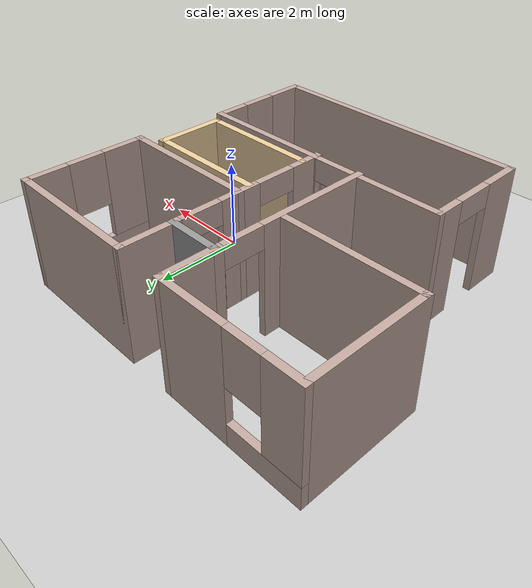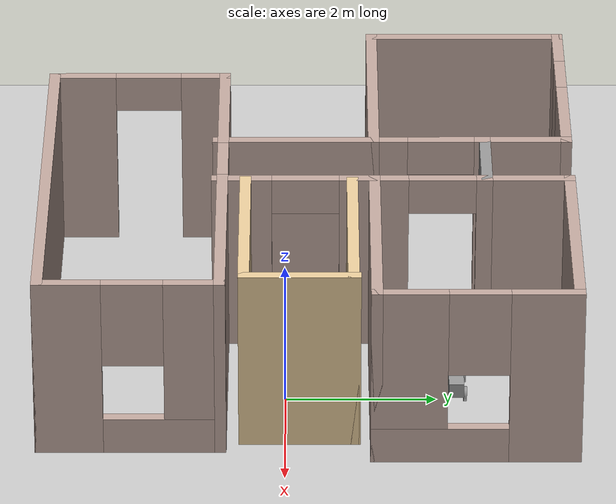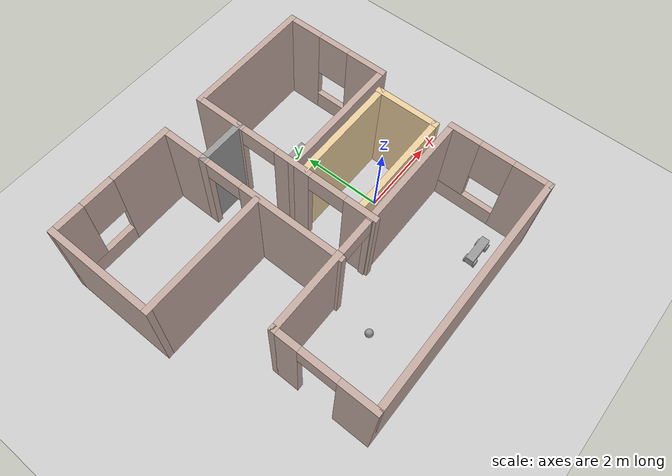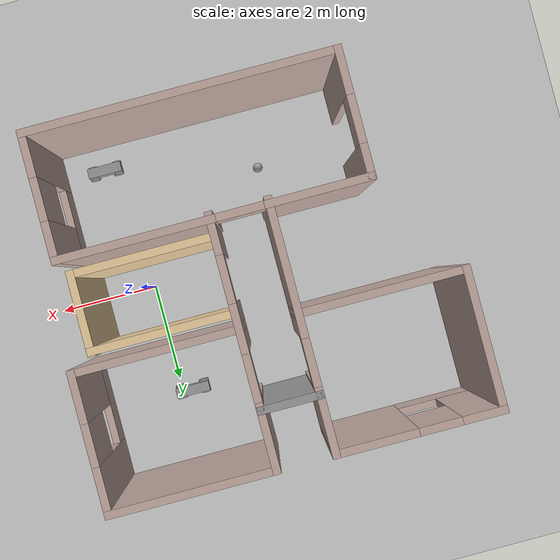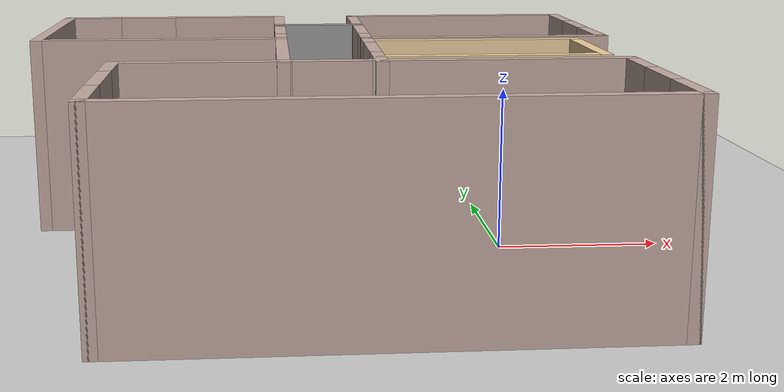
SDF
<sdf version="1.6">
 <world name="default">
  <plugin name="hello" filename="libhello.so"/>
  <light name="sun" type="directional">
   <pose>0 0 10 0 -0 0</pose>
   <diffuse>0.8 0.8 0.8 1</diffuse>
   <specular>0.2 0.2 0.2 1</specular>
   <attenuation>
    <range>1000</range>
    <constant>0.9</constant>
    <linear>0.01</linear>
    <quadratic>0.001</quadratic>
   </attenuation>
   <direction>-0.5 0.1 -0.9</direction>
  </light>
  <model name="ground_plane">
   <static>1</static>
   <link name="link">
    <collision name="collision">
     <geometry><plane><normal>0 0 1</normal><size>100 100</size></plane></geometry>
     <surface>
      <contact><collide_bitmask>65535</collide_bitmask></contact>
      <friction><ode><mu>100</mu><mu2>50</mu2></ode></friction>
     </surface>
    </collision>
    <visual name="visual">
     <cast_shadows>0</cast_shadows>
     <geometry><plane><normal>0 0 1</normal><size>100 100</size></plane></geometry>
     <material>
      <script><uri>file://media/materials/scripts/gazebo.material</uri><name>Gazebo/Grey</name></script>
     </material>
    </visual>
   </link>
  </model>
  <gravity>0 0 -9.8</gravity>
  <magnetic_field>6e-06 2.3e-05 -4.2e-05</magnetic_field>
  <atmosphere type="adiabatic"/>
  <physics name="default_physics" default="0" type="ode">
   <max_step_size>0.001</max_step_size>
   <real_time_factor>1</real_time_factor>
   <real_time_update_rate>1000</real_time_update_rate>
  </physics>
  <scene><ambient>0.4 0.4 0.4 1</ambient><background>0.7 0.7 0.7 1</background><shadows>1</shadows></scene>
  <spherical_coordinates>
   <surface_model>EARTH_WGS84</surface_model>
   <latitude_deg>0</latitude_deg>
   <longitude_deg>0</longitude_deg>
   <elevation>0</elevation>
   <heading_deg>0</heading_deg>
  </spherical_coordinates>
  <model name="Building">
   <pose>-2.12123 0.296908 0 0 -0 0</pose>
   <link name="Wall_10">
    <pose>0.481434 -1.13892 0 0 -0 3.14159</pose>
    <visual name="Wall_10_Visual_0">
     <pose>-1.4815 0 1.25 0 -0 0</pose>
     <geometry><box><size>3.037 0.15 2.5</size></box></geometry>
     <material>
      <script><uri>file://media/materials/scripts/gazebo.material</uri><name>Gazebo/Grey</name></script>
      <ambient>0.760784 0.662745 0.627451 1</ambient>
     </material>
     <meta><layer>0</layer></meta>
    </visual>
    <collision name="Wall_10_Collision_0">
     <geometry><box><size>3.037 0.15 2.5</size></box></geometry>
     <pose>-1.4815 0 1.25 0 -0 0</pose>
    </collision>
    <visual name="Wall_10_Visual_1">
     <pose>1.9685 0 1.25 0 -0 0</pose>
     <geometry><box><size>2.063 0.15 2.5</size></box></geometry>
     <material>
      <script><uri>file://media/materials/scripts/gazebo.material</uri><name>Gazebo/Grey</name></script>
      <ambient>0.760784 0.662745 0.627451 1</ambient>
     </material>
     <meta><layer>0</layer></meta>
    </visual>
    <collision name="Wall_10_Collision_1">
     <geometry><box><size>2.063 0.15 2.5</size></box></geometry>
     <pose>1.9685 0 1.25 0 -0 0</pose>
    </collision>
    <visual name="Wall_10_Visual_2">
     <pose>0.487 0 2.25 0 -0 0</pose>
     <geometry><box><size>0.9 0.15 0.5</size></box></geometry>
     <material>
      <script><uri>file://media/materials/scripts/gazebo.material</uri><name>Gazebo/Grey</name></script>
      <ambient>0.760784 0.662745 0.627451 1</ambient>
     </material>
     <meta><layer>0</layer></meta>
    </visual>
    <collision name="Wall_10_Collision_2">
     <geometry><box><size>0.9 0.15 0.5</size></box></geometry>
     <pose>0.487 0 2.25 0 -0 0</pose>
    </collision>
   </link>
   <link name="Wall_13">
    <pose>-0.55 0.588923 0 0 -0 1.5708</pose>
    <visual name="Wall_13_Visual_0">
     <pose>-0.55901 0 1.25 0 -0 0</pose>
     <geometry><box><size>2.63198 0.15 2.5</size></box></geometry>
     <material>
      <script><uri>file://media/materials/scripts/gazebo.material</uri><name>Gazebo/Grey</name></script>
      <ambient>0.760784 0.662745 0.627451 1</ambient>
     </material>
     <meta><layer>0</layer></meta>
    </visual>
    <collision name="Wall_13_Collision_0">
     <geometry><box><size>2.63198 0.15 2.5</size></box></geometry>
     <pose>-0.55901 0 1.25 0 -0 0</pose>
    </collision>
    <visual name="Wall_13_Visual_1">
     <pose>1.76599 0 1.25 0 -0 0</pose>
     <geometry><box><size>0.218021 0.15 2.5</size></box></geometry>
     <material>
      <script><uri>file://media/materials/scripts/gazebo.material</uri><name>Gazebo/Grey</name></script>
      <ambient>0.760784 0.662745 0.627451 1</ambient>
     </material>
     <meta><layer>0</layer></meta>
    </visual>
    <collision name="Wall_13_Collision_1">
     <geometry><box><size>0.218021 0.15 2.5</size></box></geometry>
     <pose>1.76599 0 1.25 0 -0 0</pose>
    </collision>
    <visual name="Wall_13_Visual_2">
     <pose>1.20698 0 2.25 0 -0 0</pose>
     <geometry><box><size>0.9 0.15 0.5</size></box></geometry>
     <material>
      <script><uri>file://media/materials/scripts/gazebo.material</uri><name>Gazebo/Grey</name></script>
      <ambient>0.760784 0.662745 0.627451 1</ambient>
     </material>
     <meta><layer>0</layer></meta>
    </visual>
    <collision name="Wall_13_Collision_2">
     <geometry><box><size>0.9 0.15 0.5</size></box></geometry>
     <pose>1.20698 0 2.25 0 -0 0</pose>
    </collision>
   </link>
   <link name="Wall_14">
    <collision name="Wall_14_Collision">
     <geometry><box><size>1.25 0.15 2.5</size></box></geometry>
     <pose>0 0 1.25 0 -0 0</pose>
    </collision>
    <visual name="Wall_14_Visual">
     <pose>0 0 1.25 0 -0 0</pose>
     <geometry><box><size>1.25 0.15 2.5</size></box></geometry>
     <material>
      <script><uri>file://media/materials/scripts/gazebo.material</uri><name>Gazebo/Grey</name></script>
      <ambient>1 1 1 1</ambient>
     </material>
     <meta><layer>0</layer></meta>
    </visual>
    <pose>0 2.38892 0 0 -0 0</pose>
   </link>
   <link name="Wall_15">
    <pose>0.55 0.588923 0 0 0 -1.5708</pose>
    <visual name="Wall_15_Visual_0">
     <pose>-1.76599 0 1.25 0 -0 0</pose>
     <geometry><box><size>0.218021 0.15 2.5</size></box></geometry>
     <material>
      <script><uri>file://media/materials/scripts/gazebo.material</uri><name>Gazebo/Grey</name></script>
      <ambient>0.760784 0.662745 0.627451 1</ambient>
     </material>
     <meta><layer>0</layer></meta>
    </visual>
    <collision name="Wall_15_Collision_0">
     <geometry><box><size>0.218021 0.15 2.5</size></box></geometry>
     <pose>-1.76599 0 1.25 0 -0 0</pose>
    </collision>
    <visual name="Wall_15_Visual_1">
     <pose>-0.29332 0 1.25 0 -0 0</pose>
     <geometry><box><size>0.927318 0.15 2.5</size></box></geometry>
     <material>
      <script><uri>file://media/materials/scripts/gazebo.material</uri><name>Gazebo/Grey</name></script>
      <ambient>0.760784 0.662745 0.627451 1</ambient>
     </material>
     <meta><layer>0</layer></meta>
    </visual>
    <collision name="Wall_15_Collision_1">
     <geometry><box><size>0.927318 0.15 2.5</size></box></geometry>
     <pose>-0.29332 0 1.25 0 -0 0</pose>
    </collision>
    <visual name="Wall_15_Visual_2">
     <pose>1.47267 0 1.25 0 -0 0</pose>
     <geometry><box><size>0.804661 0.15 2.5</size></box></geometry>
     <material>
      <script><uri>file://media/materials/scripts/gazebo.material</uri><name>Gazebo/Grey</name></script>
      <ambient>0.760784 0.662745 0.627451 1</ambient>
     </material>
     <meta><layer>0</layer></meta>
    </visual>
    <collision name="Wall_15_Collision_2">
     <geometry><box><size>0.804661 0.15 2.5</size></box></geometry>
     <pose>1.47267 0 1.25 0 -0 0</pose>
    </collision>
    <visual name="Wall_15_Visual_3">
     <pose>-1.20698 0 2.25 0 -0 0</pose>
     <geometry><box><size>0.9 0.15 0.5</size></box></geometry>
     <material>
      <script><uri>file://media/materials/scripts/gazebo.material</uri><name>Gazebo/Grey</name></script>
      <ambient>0.760784 0.662745 0.627451 1</ambient>
     </material>
     <meta><layer>0</layer></meta>
    </visual>
    <collision name="Wall_15_Collision_3">
     <geometry><box><size>0.9 0.15 0.5</size></box></geometry>
     <pose>-1.20698 0 2.25 0 -0 0</pose>
    </collision>
    <visual name="Wall_15_Visual_4">
     <pose>0.620339 0 2.25 0 -0 0</pose>
     <geometry><box><size>0.9 0.15 0.5</size></box></geometry>
     <material>
      <script><uri>file://media/materials/scripts/gazebo.material</uri><name>Gazebo/Grey</name></script>
      <ambient>0.760784 0.662745 0.627451 1</ambient>
     </material>
     <meta><layer>0</layer></meta>
    </visual>
    <collision name="Wall_15_Collision_4">
     <geometry><box><size>0.9 0.15 0.5</size></box></geometry>
     <pose>0.620339 0 2.25 0 -0 0</pose>
    </collision>
   </link>
   <link name="Wall_17">
    <collision name="Wall_17_Collision">
     <geometry><box><size>1.25 0.15 2.5</size></box></geometry>
     <pose>0 0 1.25 0 -0 0</pose>
    </collision>
    <visual name="Wall_17_Visual">
     <pose>0 0 1.25 0 -0 0</pose>
     <geometry><box><size>1.25 0.15 2.5</size></box></geometry>
     <material>
      <script><uri>file://media/materials/scripts/gazebo.material</uri><name>Gazebo/Grey</name></script>
      <ambient>0.760784 0.662745 0.627451 1</ambient>
     </material>
     <meta><layer>0</layer></meta>
    </visual>
    <pose>-0.55 2.93892 0 0 -0 1.5708</pose>
   </link>
   <link name="Wall_18">
    <pose>-2.1 3.48892 0 0 -0 3.14159</pose>
    <visual name="Wall_18_Visual_0">
     <pose>-0.816014 0 1.25 0 -0 0</pose>
     <geometry><box><size>1.61797 0.15 2.5</size></box></geometry>
     <material>
      <script><uri>file://media/materials/scripts/gazebo.material</uri><name>Gazebo/Grey</name></script>
      <ambient>0.760784 0.662745 0.627451 1</ambient>
     </material>
     <meta><layer>0</layer></meta>
    </visual>
    <collision name="Wall_18_Collision_0">
     <geometry><box><size>1.61797 0.15 2.5</size></box></geometry>
     <pose>-0.816014 0 1.25 0 -0 0</pose>
    </collision>
    <visual name="Wall_18_Visual_1">
     <pose>0.808986 0 0.25 0 -0 0</pose>
     <geometry><box><size>1.63203 0.15 0.5</size></box></geometry>
     <material>
      <script><uri>file://media/materials/scripts/gazebo.material</uri><name>Gazebo/Grey</name></script>
      <ambient>0.760784 0.662745 0.627451 1</ambient>
     </material>
     <meta><layer>0</layer></meta>
    </visual>
    <collision name="Wall_18_Collision_1">
     <geometry><box><size>1.63203 0.15 0.5</size></box></geometry>
     <pose>0.808986 0 0.25 0 -0 0</pose>
    </collision>
    <visual name="Wall_18_Visual_2">
     <pose>1.20899 0 1.5 0 -0 0</pose>
     <geometry><box><size>0.832029 0.15 2</size></box></geometry>
     <material>
      <script><uri>file://media/materials/scripts/gazebo.material</uri><name>Gazebo/Grey</name></script>
      <ambient>0.760784 0.662745 0.627451 1</ambient>
     </material>
     <meta><layer>0</layer></meta>
    </visual>
    <collision name="Wall_18_Collision_2">
     <geometry><box><size>0.832029 0.15 2</size></box></geometry>
     <pose>1.20899 0 1.5 0 -0 0</pose>
    </collision>
    <visual name="Wall_18_Visual_3">
     <pose>0.392971 0 1.9 0 -0 0</pose>
     <geometry><box><size>0.8 0.15 1.2</size></box></geometry>
     <material>
      <script><uri>file://media/materials/scripts/gazebo.material</uri><name>Gazebo/Grey</name></script>
      <ambient>0.760784 0.662745 0.627451 1</ambient>
     </material>
     <meta><layer>0</layer></meta>
    </visual>
    <collision name="Wall_18_Collision_3">
     <geometry><box><size>0.8 0.15 1.2</size></box></geometry>
     <pose>0.392971 0 1.9 0 -0 0</pose>
    </collision>
   </link>
   <link name="Wall_19">
    <collision name="Wall_19_Collision">
     <geometry><box><size>2.75 0.15 2.5</size></box></geometry>
     <pose>0 0 1.25 0 -0 0</pose>
    </collision>
    <visual name="Wall_19_Visual">
     <pose>0 0 1.25 0 -0 0</pose>
     <geometry><box><size>2.75 0.15 2.5</size></box></geometry>
     <material>
      <script><uri>file://media/materials/scripts/gazebo.material</uri><name>Gazebo/Grey</name></script>
      <ambient>0.760784 0.662745 0.627451 1</ambient>
     </material>
     <meta><layer>0</layer></meta>
    </visual>
    <pose>-3.65 2.18892 0 0 0 -1.5708</pose>
   </link>
   <link name="Wall_20">
    <collision name="Wall_20_Collision">
     <geometry><box><size>3.25 0.15 2.5</size></box></geometry>
     <pose>0 0 1.25 0 -0 0</pose>
    </collision>
    <visual name="Wall_20_Visual">
     <pose>0 0 1.25 0 -0 0</pose>
     <geometry><box><size>3.25 0.15 2.5</size></box></geometry>
     <material>
      <script><uri>file://media/materials/scripts/gazebo.material</uri><name>Gazebo/Grey</name></script>
      <ambient>0.760784 0.662745 0.627451 1</ambient>
     </material>
     <meta><layer>0</layer></meta>
    </visual>
    <pose>-2.1 0.888923 0 0 -0 0</pose>
   </link>
   <link name="Wall_22">
    <collision name="Wall_22_Collision">
     <geometry><box><size>1.25 0.15 2.5</size></box></geometry>
     <pose>0 0 1.25 0 -0 0</pose>
    </collision>
    <visual name="Wall_22_Visual">
     <pose>0 0 1.25 0 -0 0</pose>
     <geometry><box><size>1.25 0.15 2.5</size></box></geometry>
     <material>
      <script><uri>file://media/materials/scripts/gazebo.material</uri><name>Gazebo/Grey</name></script>
      <ambient>0.760784 0.662745 0.627451 1</ambient>
     </material>
     <meta><layer>0</layer></meta>
    </visual>
    <pose>0.55 2.93892 0 0 -0 1.5708</pose>
   </link>
   <link name="Wall_23">
    <collision name="Wall_23_Collision">
     <geometry><box><size>3.25 0.15 2.5</size></box></geometry>
     <pose>0 0 1.25 0 -0 0</pose>
    </collision>
    <visual name="Wall_23_Visual">
     <pose>0 0 1.25 0 -0 0</pose>
     <geometry><box><size>3.25 0.15 2.5</size></box></geometry>
     <material>
      <script><uri>file://media/materials/scripts/gazebo.material</uri><name>Gazebo/Grey</name></script>
      <ambient>0.760784 0.662745 0.627451 1</ambient>
     </material>
     <meta><layer>0</layer></meta>
    </visual>
    <pose>2.1 3.48892 0 0 -0 0</pose>
   </link>
   <link name="Wall_24">
    <pose>3.65 2.18892 0 0 0 -1.5708</pose>
    <visual name="Wall_24_Visual_0">
     <pose>-0.899165 0 1.25 0 -0 0</pose>
     <geometry><box><size>0.95167 0.15 2.5</size></box></geometry>
     <material>
      <script><uri>file://media/materials/scripts/gazebo.material</uri><name>Gazebo/Grey</name></script>
      <ambient>0.760784 0.662745 0.627451 1</ambient>
     </material>
     <meta><layer>0</layer></meta>
    </visual>
    <collision name="Wall_24_Collision_0">
     <geometry><box><size>0.95167 0.15 2.5</size></box></geometry>
     <pose>-0.899165 0 1.25 0 -0 0</pose>
    </collision>
    <visual name="Wall_24_Visual_1">
     <pose>0.475835 0 0.25 0 -0 0</pose>
     <geometry><box><size>1.79833 0.15 0.5</size></box></geometry>
     <material>
      <script><uri>file://media/materials/scripts/gazebo.material</uri><name>Gazebo/Grey</name></script>
      <ambient>0.760784 0.662745 0.627451 1</ambient>
     </material>
     <meta><layer>0</layer></meta>
    </visual>
    <collision name="Wall_24_Collision_1">
     <geometry><box><size>1.79833 0.15 0.5</size></box></geometry>
     <pose>0.475835 0 0.25 0 -0 0</pose>
    </collision>
    <visual name="Wall_24_Visual_2">
     <pose>0.875835 0 1.5 0 -0 0</pose>
     <geometry><box><size>0.99833 0.15 2</size></box></geometry>
     <material>
      <script><uri>file://media/materials/scripts/gazebo.material</uri><name>Gazebo/Grey</name></script>
      <ambient>0.760784 0.662745 0.627451 1</ambient>
     </material>
     <meta><layer>0</layer></meta>
    </visual>
    <collision name="Wall_24_Collision_2">
     <geometry><box><size>0.99833 0.15 2</size></box></geometry>
     <pose>0.875835 0 1.5 0 -0 0</pose>
    </collision>
    <visual name="Wall_24_Visual_3">
     <pose>-0.02333 0 1.9 0 -0 0</pose>
     <geometry><box><size>0.8 0.15 1.2</size></box></geometry>
     <material>
      <script><uri>file://media/materials/scripts/gazebo.material</uri><name>Gazebo/Grey</name></script>
      <ambient>0.760784 0.662745 0.627451 1</ambient>
     </material>
     <meta><layer>0</layer></meta>
    </visual>
    <collision name="Wall_24_Collision_3">
     <geometry><box><size>0.8 0.15 1.2</size></box></geometry>
     <pose>-0.02333 0 1.9 0 -0 0</pose>
    </collision>
   </link>
   <link name="Wall_25">
    <collision name="Wall_25_Collision">
     <geometry><box><size>3.25 0.15 2.5</size></box></geometry>
     <pose>0 0 1.25 0 -0 0</pose>
    </collision>
    <visual name="Wall_25_Visual">
     <pose>0 0 1.25 0 -0 0</pose>
     <geometry><box><size>3.25 0.15 2.5</size></box></geometry>
     <material>
      <script><uri>file://media/materials/scripts/gazebo.material</uri><name>Gazebo/Grey</name></script>
      <ambient>0.760784 0.662745 0.627451 1</ambient>
     </material>
     <meta><layer>0</layer></meta>
    </visual>
    <pose>2.1 0.888923 0 0 -0 3.14159</pose>
   </link>
   <link name="Wall_27">
    <collision name="Wall_27_Collision">
     <geometry><box><size>2.75 0.15 2.5</size></box></geometry>
     <pose>0 0 1.25 0 -0 0</pose>
    </collision>
    <visual name="Wall_27_Visual">
     <pose>0 0 1.25 0 -0 0</pose>
     <geometry><box><size>2.75 0.15 2.5</size></box></geometry>
     <material>
      <script><uri>file://media/materials/scripts/gazebo.material</uri><name>Gazebo/Grey</name></script>
      <ambient>0.921569 0.807843 0.615686 1</ambient>
     </material>
     <meta><layer>0</layer></meta>
    </visual>
    <pose>1.90653 0.593111 0 0 -0 0</pose>
   </link>
   <link name="Wall_28">
    <collision name="Wall_28_Collision">
     <geometry><box><size>1.59714 0.15 2.5</size></box></geometry>
     <pose>0 0 1.25 0 -0 0</pose>
    </collision>
    <visual name="Wall_28_Visual">
     <pose>0 0 1.25 0 -0 0</pose>
     <geometry><box><size>1.59714 0.15 2.5</size></box></geometry>
     <material>
      <script><uri>file://media/materials/scripts/gazebo.material</uri><name>Gazebo/Grey</name></script>
      <ambient>0.921569 0.807843 0.615686 1</ambient>
     </material>
     <meta><layer>0</layer></meta>
    </visual>
    <pose>3.20653 -0.107238 0 0 0 -1.5708</pose>
   </link>
   <link name="Wall_29">
    <collision name="Wall_29_Collision">
     <geometry><box><size>2.75 0.15 2.5</size></box></geometry>
     <pose>0 0 1.25 0 -0 0</pose>
    </collision>
    <visual name="Wall_29_Visual">
     <pose>0 0 1.25 0 -0 0</pose>
     <geometry><box><size>2.75 0.15 2.5</size></box></geometry>
     <material>
      <script><uri>file://media/materials/scripts/gazebo.material</uri><name>Gazebo/Grey</name></script>
      <ambient>0.921569 0.807843 0.615686 1</ambient>
     </material>
     <meta><layer>0</layer></meta>
    </visual>
    <pose>1.8834 -0.830718 0 0 -0 3.14159</pose>
   </link>
   <link name="Wall_7">
    <pose>-2.44357 -2.31392 0 0 0 -1.5708</pose>
    <visual name="Wall_7_Visual_0">
     <pose>-0.9085 0 1.25 0 -0 0</pose>
     <geometry><box><size>0.683 0.15 2.5</size></box></geometry>
     <material>
      <script><uri>file://media/materials/scripts/gazebo.material</uri><name>Gazebo/Grey</name></script>
      <ambient>0.760784 0.662745 0.627451 1</ambient>
     </material>
     <meta><layer>0</layer></meta>
    </visual>
    <collision name="Wall_7_Collision_0">
     <geometry><box><size>0.683 0.15 2.5</size></box></geometry>
     <pose>-0.9085 0 1.25 0 -0 0</pose>
    </collision>
    <visual name="Wall_7_Visual_1">
     <pose>0.7915 0 1.25 0 -0 0</pose>
     <geometry><box><size>0.917 0.15 2.5</size></box></geometry>
     <material>
      <script><uri>file://media/materials/scripts/gazebo.material</uri><name>Gazebo/Grey</name></script>
      <ambient>0.760784 0.662745 0.627451 1</ambient>
     </material>
     <meta><layer>0</layer></meta>
    </visual>
    <collision name="Wall_7_Collision_1">
     <geometry><box><size>0.917 0.15 2.5</size></box></geometry>
     <pose>0.7915 0 1.25 0 -0 0</pose>
    </collision>
    <visual name="Wall_7_Visual_2">
     <pose>-0.117 0 2.25 0 -0 0</pose>
     <geometry><box><size>0.9 0.15 0.5</size></box></geometry>
     <material>
      <script><uri>file://media/materials/scripts/gazebo.material</uri><name>Gazebo/Grey</name></script>
      <ambient>0.760784 0.662745 0.627451 1</ambient>
     </material>
     <meta><layer>0</layer></meta>
    </visual>
    <collision name="Wall_7_Collision_2">
     <geometry><box><size>0.9 0.15 0.5</size></box></geometry>
     <pose>-0.117 0 2.25 0 -0 0</pose>
    </collision>
   </link>
   <link name="Wall_8">
    <collision name="Wall_8_Collision">
     <geometry><box><size>6 0.15 2.5</size></box></geometry>
     <pose>0 0 1.25 0 -0 0</pose>
    </collision>
    <visual name="Wall_8_Visual">
     <pose>0 0 1.25 0 -0 0</pose>
     <geometry><box><size>6 0.15 2.5</size></box></geometry>
     <material>
      <script><uri>file://media/materials/scripts/gazebo.material</uri><name>Gazebo/Grey</name></script>
      <ambient>0.760784 0.662745 0.627451 1</ambient>
     </material>
     <meta><layer>0</layer></meta>
    </visual>
    <pose>0.481434 -3.48892 0 0 -0 0</pose>
   </link>
   <link name="Wall_9">
    <pose>3.40643 -2.31392 0 0 -0 1.5708</pose>
    <visual name="Wall_9_Visual_0">
     <pose>-0.801 0 1.25 0 -0 0</pose>
     <geometry><box><size>0.898 0.15 2.5</size></box></geometry>
     <material>
      <script><uri>file://media/materials/scripts/gazebo.material</uri><name>Gazebo/Grey</name></script>
      <ambient>0.760784 0.662745 0.627451 1</ambient>
     </material>
     <meta><layer>0</layer></meta>
    </visual>
    <collision name="Wall_9_Collision_0">
     <geometry><box><size>0.898 0.15 2.5</size></box></geometry>
     <pose>-0.801 0 1.25 0 -0 0</pose>
    </collision>
    <visual name="Wall_9_Visual_1">
     <pose>0.449 0 0.25 0 -0 0</pose>
     <geometry><box><size>1.602 0.15 0.5</size></box></geometry>
     <material>
      <script><uri>file://media/materials/scripts/gazebo.material</uri><name>Gazebo/Grey</name></script>
      <ambient>0.760784 0.662745 0.627451 1</ambient>
     </material>
     <meta><layer>0</layer></meta>
    </visual>
    <collision name="Wall_9_Collision_1">
     <geometry><box><size>1.602 0.15 0.5</size></box></geometry>
     <pose>0.449 0 0.25 0 -0 0</pose>
    </collision>
    <visual name="Wall_9_Visual_2">
     <pose>0.849 0 1.5 0 -0 0</pose>
     <geometry><box><size>0.802 0.15 2</size></box></geometry>
     <material>
      <script><uri>file://media/materials/scripts/gazebo.material</uri><name>Gazebo/Grey</name></script>
      <ambient>0.760784 0.662745 0.627451 1</ambient>
     </material>
     <meta><layer>0</layer></meta>
    </visual>
    <collision name="Wall_9_Collision_2">
     <geometry><box><size>0.802 0.15 2</size></box></geometry>
     <pose>0.849 0 1.5 0 -0 0</pose>
    </collision>
    <visual name="Wall_9_Visual_3">
     <pose>0.048 0 1.9 0 -0 0</pose>
     <geometry><box><size>0.8 0.15 1.2</size></box></geometry>
     <material>
      <script><uri>file://media/materials/scripts/gazebo.material</uri><name>Gazebo/Grey</name></script>
      <ambient>0.760784 0.662745 0.627451 1</ambient>
     </material>
     <meta><layer>0</layer></meta>
    </visual>
    <collision name="Wall_9_Collision_3">
     <geometry><box><size>0.8 0.15 1.2</size></box></geometry>
     <pose>0.048 0 1.9 0 -0 0</pose>
    </collision>
   </link>
   <static>1</static>
  </model>
  <model name="RobotCar">
   <link name="link_0">
    <pose>5.94727 -0.430169 0.2 0 -0 0</pose>
    <inertial>
     <mass>1</mass>
     <inertia>
      <ixx>0.166667</ixx>
      <ixy>0</ixy>
      <ixz>0</ixz>
      <iyy>0.166667</iyy>
      <iyz>0</iyz>
      <izz>0.166667</izz>
     </inertia>
    </inertial>
    <visual name="visual">
     <geometry><box><size>0.7 0.2 0.2</size></box></geometry>
     <material>
      <lighting>1</lighting>
      <script><uri>file://media/materials/scripts/gazebo.material</uri><name>Gazebo/Grey</name></script>
      <shader type="pixel"><normal_map>__default__</normal_map></shader>
      <ambient>0.3 0.3 0.3 1</ambient>
      <diffuse>0.7 0.7 0.7 1</diffuse>
      <specular>0.01 0.01 0.01 1</specular>
      <emissive>0 0 0 1</emissive>
     </material>
    </visual>
    <collision name="collision">
     <geometry><box><size>0.7 0.2 0.2</size></box></geometry>
     <surface>
      <friction>
       <ode><mu>1</mu><mu2>1</mu2><fdir1>0 0 0</fdir1><slip1>0</slip1><slip2>0</slip2></ode>
       <torsional>
        <coefficient>1</coefficient>
        <patch_radius>0</patch_radius>
        <surface_radius>0</surface_radius>
        <use_patch_radius>1</use_patch_radius>
        <ode><slip>0</slip></ode>
       </torsional>
      </friction>
      <bounce><restitution_coefficient>0</restitution_coefficient><threshold>1e+06</threshold></bounce>
      <contact>
       <collide_without_contact>0</collide_without_contact>
       <collide_without_contact_bitmask>1</collide_without_contact_bitmask>
       <collide_bitmask>1</collide_bitmask>
       <ode>
        <soft_cfm>0</soft_cfm>
        <soft_erp>0.2</soft_erp>
        <kp>1e+13</kp>
        <kd>1</kd>
        <max_vel>0.01</max_vel>
        <min_depth>0</min_depth>
       </ode>
       <bullet>
        <split_impulse>1</split_impulse>
        <split_impulse_penetration_threshold>-0.01</split_impulse_penetration_threshold>
        <soft_cfm>0</soft_cfm>
        <soft_erp>0.2</soft_erp>
        <kp>1e+13</kp>
        <kd>1</kd>
       </bullet>
      </contact>
     </surface>
    </collision>
   </link>
   <link name="link_2">
    <pose>5.69727 -0.313774 0.1 1.545 -0 0</pose>
    <inertial>
     <mass>1</mass>
     <inertia><ixx>0.145833</ixx><ixy>0</ixy><ixz>0</ixz><iyy>0.145833</iyy><iyz>0</iyz><izz>0.125</izz></inertia>
    </inertial>
    <visual name="visual">
     <geometry><cylinder><radius>0.1</radius><length>0.04</length></cylinder></geometry>
     <material>
      <lighting>1</lighting>
      <script><uri>file://media/materials/scripts/gazebo.material</uri><name>Gazebo/Grey</name></script>
      <shader type="pixel"><normal_map>__default__</normal_map></shader>
      <ambient>0.3 0.3 0.3 1</ambient>
      <diffuse>0.7 0.7 0.7 1</diffuse>
      <specular>0.01 0.01 0.01 1</specular>
      <emissive>0 0 0 1</emissive>
     </material>
    </visual>
    <collision name="collision">
     <geometry><cylinder><radius>0.1</radius><length>0.04</length></cylinder></geometry>
     <surface>
      <friction>
       <ode><mu>1</mu><mu2>1</mu2><fdir1>0 0 0</fdir1><slip1>0</slip1><slip2>0</slip2></ode>
       <torsional>
        <coefficient>1</coefficient>
        <patch_radius>0</patch_radius>
        <surface_radius>0</surface_radius>
        <use_patch_radius>1</use_patch_radius>
        <ode><slip>0</slip></ode>
       </torsional>
      </friction>
      <bounce><restitution_coefficient>0</restitution_coefficient><threshold>1e+06</threshold></bounce>
      <contact>
       <collide_without_contact>0</collide_without_contact>
       <collide_without_contact_bitmask>1</collide_without_contact_bitmask>
       <collide_bitmask>1</collide_bitmask>
       <ode>
        <soft_cfm>0</soft_cfm>
        <soft_erp>0.2</soft_erp>
        <kp>1e+13</kp>
        <kd>1</kd>
        <max_vel>0.01</max_vel>
        <min_depth>0</min_depth>
       </ode>
       <bullet>
        <split_impulse>1</split_impulse>
        <split_impulse_penetration_threshold>-0.01</split_impulse_penetration_threshold>
        <soft_cfm>0</soft_cfm>
        <soft_erp>0.2</soft_erp>
        <kp>1e+13</kp>
        <kd>1</kd>
       </bullet>
      </contact>
     </surface>
    </collision>
   </link>
   <link name="link_2_clone">
    <pose>6.19727 -0.312742 0.1 1.545 -0 0</pose>
    <inertial>
     <mass>1</mass>
     <inertia><ixx>0.145833</ixx><ixy>0</ixy><ixz>0</ixz><iyy>0.145833</iyy><iyz>0</iyz><izz>0.125</izz></inertia>
    </inertial>
    <visual name="visual">
     <geometry><cylinder><radius>0.1</radius><length>0.04</length></cylinder></geometry>
     <material>
      <lighting>1</lighting>
      <script><uri>file://media/materials/scripts/gazebo.material</uri><name>Gazebo/Grey</name></script>
      <shader type="pixel"><normal_map>__default__</normal_map></shader>
      <ambient>0.3 0.3 0.3 1</ambient>
      <diffuse>0.7 0.7 0.7 1</diffuse>
      <specular>0.01 0.01 0.01 1</specular>
      <emissive>0 0 0 1</emissive>
     </material>
    </visual>
    <collision name="collision">
     <geometry><cylinder><radius>0.1</radius><length>0.04</length></cylinder></geometry>
     <surface>
      <friction>
       <ode><mu>1</mu><mu2>1</mu2><fdir1>0 0 0</fdir1><slip1>0</slip1><slip2>0</slip2></ode>
       <torsional>
        <coefficient>1</coefficient>
        <patch_radius>0</patch_radius>
        <surface_radius>0</surface_radius>
        <use_patch_radius>1</use_patch_radius>
        <ode><slip>0</slip></ode>
       </torsional>
      </friction>
      <bounce><restitution_coefficient>0</restitution_coefficient><threshold>1e+06</threshold></bounce>
      <contact>
       <collide_without_contact>0</collide_without_contact>
       <collide_without_contact_bitmask>1</collide_without_contact_bitmask>
       <collide_bitmask>1</collide_bitmask>
       <ode>
        <soft_cfm>0</soft_cfm>
        <soft_erp>0.2</soft_erp>
        <kp>1e+13</kp>
        <kd>1</kd>
        <max_vel>0.01</max_vel>
        <min_depth>0</min_depth>
       </ode>
       <bullet>
        <split_impulse>1</split_impulse>
        <split_impulse_penetration_threshold>-0.01</split_impulse_penetration_threshold>
        <soft_cfm>0</soft_cfm>
        <soft_erp>0.2</soft_erp>
        <kp>1e+13</kp>
        <kd>1</kd>
       </bullet>
      </contact>
     </surface>
    </collision>
   </link>
   <link name="link_2_clone_0">
    <pose>6.19727 -0.552742 0.1 1.545 -0 0</pose>
    <inertial>
     <mass>1</mass>
     <inertia><ixx>0.145833</ixx><ixy>0</ixy><ixz>0</ixz><iyy>0.145833</iyy><iyz>0</iyz><izz>0.125</izz></inertia>
    </inertial>
    <visual name="visual">
     <geometry><cylinder><radius>0.1</radius><length>0.04</length></cylinder></geometry>
     <material>
      <lighting>1</lighting>
      <script><uri>file://media/materials/scripts/gazebo.material</uri><name>Gazebo/Grey</name></script>
      <shader type="pixel"><normal_map>__default__</normal_map></shader>
      <ambient>0.3 0.3 0.3 1</ambient>
      <diffuse>0.7 0.7 0.7 1</diffuse>
      <specular>0.01 0.01 0.01 1</specular>
      <emissive>0 0 0 1</emissive>
     </material>
    </visual>
    <collision name="collision">
     <geometry><cylinder><radius>0.1</radius><length>0.04</length></cylinder></geometry>
     <surface>
      <friction>
       <ode><mu>1</mu><mu2>1</mu2><fdir1>0 0 0</fdir1><slip1>0</slip1><slip2>0</slip2></ode>
       <torsional>
        <coefficient>1</coefficient>
        <patch_radius>0</patch_radius>
        <surface_radius>0</surface_radius>
        <use_patch_radius>1</use_patch_radius>
        <ode><slip>0</slip></ode>
       </torsional>
      </friction>
      <bounce><restitution_coefficient>0</restitution_coefficient><threshold>1e+06</threshold></bounce>
      <contact>
       <collide_without_contact>0</collide_without_contact>
       <collide_without_contact_bitmask>1</collide_without_contact_bitmask>
       <collide_bitmask>1</collide_bitmask>
       <ode>
        <soft_cfm>0</soft_cfm>
        <soft_erp>0.2</soft_erp>
        <kp>1e+13</kp>
        <kd>1</kd>
        <max_vel>0.01</max_vel>
        <min_depth>0</min_depth>
       </ode>
       <bullet>
        <split_impulse>1</split_impulse>
        <split_impulse_penetration_threshold>-0.01</split_impulse_penetration_threshold>
        <soft_cfm>0</soft_cfm>
        <soft_erp>0.2</soft_erp>
        <kp>1e+13</kp>
        <kd>1</kd>
       </bullet>
      </contact>
     </surface>
    </collision>
   </link>
   <link name="link_2_clone_1">
    <pose>5.69727 -0.552742 0.1 1.545 -0 0</pose>
    <inertial>
     <mass>1</mass>
     <inertia><ixx>0.145833</ixx><ixy>0</ixy><ixz>0</ixz><iyy>0.145833</iyy><iyz>0</iyz><izz>0.125</izz></inertia>
    </inertial>
    <visual name="visual">
     <geometry><cylinder><radius>0.1</radius><length>0.04</length></cylinder></geometry>
     <material>
      <lighting>1</lighting>
      <script><uri>file://media/materials/scripts/gazebo.material</uri><name>Gazebo/Grey</name></script>
      <shader type="pixel"><normal_map>__default__</normal_map></shader>
      <ambient>0.3 0.3 0.3 1</ambient>
      <diffuse>0.7 0.7 0.7 1</diffuse>
      <specular>0.01 0.01 0.01 1</specular>
      <emissive>0 0 0 1</emissive>
     </material>
    </visual>
    <collision name="collision">
     <geometry><cylinder><radius>0.1</radius><length>0.04</length></cylinder></geometry>
     <surface>
      <friction>
       <ode><mu>1</mu><mu2>1</mu2><fdir1>0 0 0</fdir1><slip1>0</slip1><slip2>0</slip2></ode>
       <torsional>
        <coefficient>1</coefficient>
        <patch_radius>0</patch_radius>
        <surface_radius>0</surface_radius>
        <use_patch_radius>1</use_patch_radius>
        <ode><slip>0</slip></ode>
       </torsional>
      </friction>
      <bounce><restitution_coefficient>0</restitution_coefficient><threshold>1e+06</threshold></bounce>
      <contact>
       <collide_without_contact>0</collide_without_contact>
       <collide_without_contact_bitmask>1</collide_without_contact_bitmask>
       <collide_bitmask>1</collide_bitmask>
       <ode>
        <soft_cfm>0</soft_cfm>
        <soft_erp>0.2</soft_erp>
        <kp>1e+13</kp>
        <kd>1</kd>
        <max_vel>0.01</max_vel>
        <min_depth>0</min_depth>
       </ode>
       <bullet>
        <split_impulse>1</split_impulse>
        <split_impulse_penetration_threshold>-0.01</split_impulse_penetration_threshold>
        <soft_cfm>0</soft_cfm>
        <soft_erp>0.2</soft_erp>
        <kp>1e+13</kp>
        <kd>1</kd>
       </bullet>
      </contact>
     </surface>
    </collision>
   </link>
   <joint name="link_0_JOINT_1" type="revolute">
    <parent>link_0</parent>
    <child>link_2_clone</child>
    <axis>
     <xyz>1 0 0</xyz>
     <use_parent_model_frame>0</use_parent_model_frame>
     <limit>
      <lower>-1.79769e+308</lower>
      <upper>1.79769e+308</upper>
      <effort>-1</effort>
      <velocity>-1</velocity>
     </limit>
     <dynamics>
      <spring_reference>0</spring_reference>
      <spring_stiffness>0</spring_stiffness>
      <damping>0</damping>
     </dynamics>
    </axis>
    <physics>
     <ode><limit><cfm>0</cfm><erp>0.2</erp></limit><suspension><cfm>0</cfm><erp>0.2</erp></suspension></ode>
    </physics>
   </joint>
   <joint name="link_0_JOINT_2" type="revolute">
    <parent>link_0</parent>
    <child>link_2</child>
    <axis>
     <xyz>1 0 0</xyz>
     <use_parent_model_frame>0</use_parent_model_frame>
     <limit>
      <lower>-1.79769e+308</lower>
      <upper>1.79769e+308</upper>
      <effort>-1</effort>
      <velocity>-1</velocity>
     </limit>
     <dynamics>
      <spring_reference>0</spring_reference>
      <spring_stiffness>0</spring_stiffness>
      <damping>0</damping>
     </dynamics>
    </axis>
    <physics>
     <ode><limit><cfm>0</cfm><erp>0.2</erp></limit><suspension><cfm>0</cfm><erp>0.2</erp></suspension></ode>
    </physics>
   </joint>
   <joint name="link_0_JOINT_3" type="revolute">
    <parent>link_0</parent>
    <child>link_2_clone_1</child>
    <axis>
     <xyz>1 0 0</xyz>
     <use_parent_model_frame>0</use_parent_model_frame>
     <limit>
      <lower>-1.79769e+308</lower>
      <upper>1.79769e+308</upper>
      <effort>-1</effort>
      <velocity>-1</velocity>
     </limit>
     <dynamics>
      <spring_reference>0</spring_reference>
      <spring_stiffness>0</spring_stiffness>
      <damping>0</damping>
     </dynamics>
    </axis>
    <physics>
     <ode><limit><cfm>0</cfm><erp>0.2</erp></limit><suspension><cfm>0</cfm><erp>0.2</erp></suspension></ode>
    </physics>
   </joint>
   <joint name="link_0_JOINT_4" type="revolute">
    <parent>link_0</parent>
    <child>link_2_clone_0</child>
    <axis>
     <xyz>1.02 0 0</xyz>
     <use_parent_model_frame>0</use_parent_model_frame>
     <limit>
      <lower>-1.79769e+308</lower>
      <upper>1.79769e+308</upper>
      <effort>-1</effort>
      <velocity>-1</velocity>
     </limit>
     <dynamics>
      <spring_reference>0</spring_reference>
      <spring_stiffness>0</spring_stiffness>
      <damping>0</damping>
     </dynamics>
    </axis>
    <physics>
     <ode><limit><cfm>0</cfm><erp>0.2</erp></limit><suspension><cfm>0</cfm><erp>0.2</erp></suspension></ode>
    </physics>
   </joint>
   <static>0</static>
   <pose>-5.57857 -2.17817 5e-06 6e-06 1e-06 -0.000929</pose>
  </model>
  <model name="RobotCar_0">
   <link name="link_0">
    <pose>5.94727 -0.430169 0.2 0 -0 0</pose>
    <inertial>
     <mass>1</mass>
     <inertia>
      <ixx>0.166667</ixx>
      <ixy>0</ixy>
      <ixz>0</ixz>
      <iyy>0.166667</iyy>
      <iyz>0</iyz>
      <izz>0.166667</izz>
     </inertia>
    </inertial>
    <visual name="visual">
     <geometry><box><size>0.7 0.2 0.2</size></box></geometry>
     <material>
      <lighting>1</lighting>
      <script><uri>file://media/materials/scripts/gazebo.material</uri><name>Gazebo/Grey</name></script>
      <shader type="pixel"><normal_map>__default__</normal_map></shader>
      <ambient>0.3 0.3 0.3 1</ambient>
      <diffuse>0.7 0.7 0.7 1</diffuse>
      <specular>0.01 0.01 0.01 1</specular>
      <emissive>0 0 0 1</emissive>
     </material>
    </visual>
    <collision name="collision">
     <geometry><box><size>0.7 0.2 0.2</size></box></geometry>
     <surface>
      <friction>
       <ode><mu>1</mu><mu2>1</mu2><fdir1>0 0 0</fdir1><slip1>0</slip1><slip2>0</slip2></ode>
       <torsional>
        <coefficient>1</coefficient>
        <patch_radius>0</patch_radius>
        <surface_radius>0</surface_radius>
        <use_patch_radius>1</use_patch_radius>
        <ode><slip>0</slip></ode>
       </torsional>
      </friction>
      <bounce><restitution_coefficient>0</restitution_coefficient><threshold>1e+06</threshold></bounce>
      <contact>
       <collide_without_contact>0</collide_without_contact>
       <collide_without_contact_bitmask>1</collide_without_contact_bitmask>
       <collide_bitmask>1</collide_bitmask>
       <ode>
        <soft_cfm>0</soft_cfm>
        <soft_erp>0.2</soft_erp>
        <kp>1e+13</kp>
        <kd>1</kd>
        <max_vel>0.01</max_vel>
        <min_depth>0</min_depth>
       </ode>
       <bullet>
        <split_impulse>1</split_impulse>
        <split_impulse_penetration_threshold>-0.01</split_impulse_penetration_threshold>
        <soft_cfm>0</soft_cfm>
        <soft_erp>0.2</soft_erp>
        <kp>1e+13</kp>
        <kd>1</kd>
       </bullet>
      </contact>
     </surface>
    </collision>
   </link>
   <link name="link_2">
    <pose>5.69727 -0.313774 0.1 1.545 -0 0</pose>
    <inertial>
     <mass>1</mass>
     <inertia><ixx>0.145833</ixx><ixy>0</ixy><ixz>0</ixz><iyy>0.145833</iyy><iyz>0</iyz><izz>0.125</izz></inertia>
    </inertial>
    <visual name="visual">
     <geometry><cylinder><radius>0.1</radius><length>0.04</length></cylinder></geometry>
     <material>
      <lighting>1</lighting>
      <script><uri>file://media/materials/scripts/gazebo.material</uri><name>Gazebo/Grey</name></script>
      <shader type="pixel"><normal_map>__default__</normal_map></shader>
      <ambient>0.3 0.3 0.3 1</ambient>
      <diffuse>0.7 0.7 0.7 1</diffuse>
      <specular>0.01 0.01 0.01 1</specular>
      <emissive>0 0 0 1</emissive>
     </material>
    </visual>
    <collision name="collision">
     <geometry><cylinder><radius>0.1</radius><length>0.04</length></cylinder></geometry>
     <surface>
      <friction>
       <ode><mu>1</mu><mu2>1</mu2><fdir1>0 0 0</fdir1><slip1>0</slip1><slip2>0</slip2></ode>
       <torsional>
        <coefficient>1</coefficient>
        <patch_radius>0</patch_radius>
        <surface_radius>0</surface_radius>
        <use_patch_radius>1</use_patch_radius>
        <ode><slip>0</slip></ode>
       </torsional>
      </friction>
      <bounce><restitution_coefficient>0</restitution_coefficient><threshold>1e+06</threshold></bounce>
      <contact>
       <collide_without_contact>0</collide_without_contact>
       <collide_without_contact_bitmask>1</collide_without_contact_bitmask>
       <collide_bitmask>1</collide_bitmask>
       <ode>
        <soft_cfm>0</soft_cfm>
        <soft_erp>0.2</soft_erp>
        <kp>1e+13</kp>
        <kd>1</kd>
        <max_vel>0.01</max_vel>
        <min_depth>0</min_depth>
       </ode>
       <bullet>
        <split_impulse>1</split_impulse>
        <split_impulse_penetration_threshold>-0.01</split_impulse_penetration_threshold>
        <soft_cfm>0</soft_cfm>
        <soft_erp>0.2</soft_erp>
        <kp>1e+13</kp>
        <kd>1</kd>
       </bullet>
      </contact>
     </surface>
    </collision>
   </link>
   <link name="link_2_clone">
    <pose>6.19727 -0.312742 0.1 1.545 -0 0</pose>
    <inertial>
     <mass>1</mass>
     <inertia><ixx>0.145833</ixx><ixy>0</ixy><ixz>0</ixz><iyy>0.145833</iyy><iyz>0</iyz><izz>0.125</izz></inertia>
    </inertial>
    <visual name="visual">
     <geometry><cylinder><radius>0.1</radius><length>0.04</length></cylinder></geometry>
     <material>
      <lighting>1</lighting>
      <script><uri>file://media/materials/scripts/gazebo.material</uri><name>Gazebo/Grey</name></script>
      <shader type="pixel"><normal_map>__default__</normal_map></shader>
      <ambient>0.3 0.3 0.3 1</ambient>
      <diffuse>0.7 0.7 0.7 1</diffuse>
      <specular>0.01 0.01 0.01 1</specular>
      <emissive>0 0 0 1</emissive>
     </material>
    </visual>
    <collision name="collision">
     <geometry><cylinder><radius>0.1</radius><length>0.04</length></cylinder></geometry>
     <surface>
      <friction>
       <ode><mu>1</mu><mu2>1</mu2><fdir1>0 0 0</fdir1><slip1>0</slip1><slip2>0</slip2></ode>
       <torsional>
        <coefficient>1</coefficient>
        <patch_radius>0</patch_radius>
        <surface_radius>0</surface_radius>
        <use_patch_radius>1</use_patch_radius>
        <ode><slip>0</slip></ode>
       </torsional>
      </friction>
      <bounce><restitution_coefficient>0</restitution_coefficient><threshold>1e+06</threshold></bounce>
      <contact>
       <collide_without_contact>0</collide_without_contact>
       <collide_without_contact_bitmask>1</collide_without_contact_bitmask>
       <collide_bitmask>1</collide_bitmask>
       <ode>
        <soft_cfm>0</soft_cfm>
        <soft_erp>0.2</soft_erp>
        <kp>1e+13</kp>
        <kd>1</kd>
        <max_vel>0.01</max_vel>
        <min_depth>0</min_depth>
       </ode>
       <bullet>
        <split_impulse>1</split_impulse>
        <split_impulse_penetration_threshold>-0.01</split_impulse_penetration_threshold>
        <soft_cfm>0</soft_cfm>
        <soft_erp>0.2</soft_erp>
        <kp>1e+13</kp>
        <kd>1</kd>
       </bullet>
      </contact>
     </surface>
    </collision>
   </link>
   <link name="link_2_clone_0">
    <pose>6.19727 -0.552742 0.1 1.545 -0 0</pose>
    <inertial>
     <mass>1</mass>
     <inertia><ixx>0.145833</ixx><ixy>0</ixy><ixz>0</ixz><iyy>0.145833</iyy><iyz>0</iyz><izz>0.125</izz></inertia>
    </inertial>
    <visual name="visual">
     <geometry><cylinder><radius>0.1</radius><length>0.04</length></cylinder></geometry>
     <material>
      <lighting>1</lighting>
      <script><uri>file://media/materials/scripts/gazebo.material</uri><name>Gazebo/Grey</name></script>
      <shader type="pixel"><normal_map>__default__</normal_map></shader>
      <ambient>0.3 0.3 0.3 1</ambient>
      <diffuse>0.7 0.7 0.7 1</diffuse>
      <specular>0.01 0.01 0.01 1</specular>
      <emissive>0 0 0 1</emissive>
     </material>
    </visual>
    <collision name="collision">
     <geometry><cylinder><radius>0.1</radius><length>0.04</length></cylinder></geometry>
     <surface>
      <friction>
       <ode><mu>1</mu><mu2>1</mu2><fdir1>0 0 0</fdir1><slip1>0</slip1><slip2>0</slip2></ode>
       <torsional>
        <coefficient>1</coefficient>
        <patch_radius>0</patch_radius>
        <surface_radius>0</surface_radius>
        <use_patch_radius>1</use_patch_radius>
        <ode><slip>0</slip></ode>
       </torsional>
      </friction>
      <bounce><restitution_coefficient>0</restitution_coefficient><threshold>1e+06</threshold></bounce>
      <contact>
       <collide_without_contact>0</collide_without_contact>
       <collide_without_contact_bitmask>1</collide_without_contact_bitmask>
       <collide_bitmask>1</collide_bitmask>
       <ode>
        <soft_cfm>0</soft_cfm>
        <soft_erp>0.2</soft_erp>
        <kp>1e+13</kp>
        <kd>1</kd>
        <max_vel>0.01</max_vel>
        <min_depth>0</min_depth>
       </ode>
       <bullet>
        <split_impulse>1</split_impulse>
        <split_impulse_penetration_threshold>-0.01</split_impulse_penetration_threshold>
        <soft_cfm>0</soft_cfm>
        <soft_erp>0.2</soft_erp>
        <kp>1e+13</kp>
        <kd>1</kd>
       </bullet>
      </contact>
     </surface>
    </collision>
   </link>
   <link name="link_2_clone_1">
    <pose>5.69727 -0.552742 0.1 1.545 -0 0</pose>
    <inertial>
     <mass>1</mass>
     <inertia><ixx>0.145833</ixx><ixy>0</ixy><ixz>0</ixz><iyy>0.145833</iyy><iyz>0</iyz><izz>0.125</izz></inertia>
    </inertial>
    <visual name="visual">
     <geometry><cylinder><radius>0.1</radius><length>0.04</length></cylinder></geometry>
     <material>
      <lighting>1</lighting>
      <script><uri>file://media/materials/scripts/gazebo.material</uri><name>Gazebo/Grey</name></script>
      <shader type="pixel"><normal_map>__default__</normal_map></shader>
      <ambient>0.3 0.3 0.3 1</ambient>
      <diffuse>0.7 0.7 0.7 1</diffuse>
      <specular>0.01 0.01 0.01 1</specular>
      <emissive>0 0 0 1</emissive>
     </material>
    </visual>
    <collision name="collision">
     <geometry><cylinder><radius>0.1</radius><length>0.04</length></cylinder></geometry>
     <surface>
      <friction>
       <ode><mu>1</mu><mu2>1</mu2><fdir1>0 0 0</fdir1><slip1>0</slip1><slip2>0</slip2></ode>
       <torsional>
        <coefficient>1</coefficient>
        <patch_radius>0</patch_radius>
        <surface_radius>0</surface_radius>
        <use_patch_radius>1</use_patch_radius>
        <ode><slip>0</slip></ode>
       </torsional>
      </friction>
      <bounce><restitution_coefficient>0</restitution_coefficient><threshold>1e+06</threshold></bounce>
      <contact>
       <collide_without_contact>0</collide_without_contact>
       <collide_without_contact_bitmask>1</collide_without_contact_bitmask>
       <collide_bitmask>1</collide_bitmask>
       <ode>
        <soft_cfm>0</soft_cfm>
        <soft_erp>0.2</soft_erp>
        <kp>1e+13</kp>
        <kd>1</kd>
        <max_vel>0.01</max_vel>
        <min_depth>0</min_depth>
       </ode>
       <bullet>
        <split_impulse>1</split_impulse>
        <split_impulse_penetration_threshold>-0.01</split_impulse_penetration_threshold>
        <soft_cfm>0</soft_cfm>
        <soft_erp>0.2</soft_erp>
        <kp>1e+13</kp>
        <kd>1</kd>
       </bullet>
      </contact>
     </surface>
    </collision>
   </link>
   <joint name="link_0_JOINT_1" type="revolute">
    <parent>link_0</parent>
    <child>link_2_clone</child>
    <axis>
     <xyz>1 0 0</xyz>
     <use_parent_model_frame>0</use_parent_model_frame>
     <limit>
      <lower>-1.79769e+308</lower>
      <upper>1.79769e+308</upper>
      <effort>-1</effort>
      <velocity>-1</velocity>
     </limit>
     <dynamics>
      <spring_reference>0</spring_reference>
      <spring_stiffness>0</spring_stiffness>
      <damping>0</damping>
     </dynamics>
    </axis>
    <physics>
     <ode><limit><cfm>0</cfm><erp>0.2</erp></limit><suspension><cfm>0</cfm><erp>0.2</erp></suspension></ode>
    </physics>
   </joint>
   <joint name="link_0_JOINT_2" type="revolute">
    <parent>link_0</parent>
    <child>link_2</child>
    <axis>
     <xyz>1 0 0</xyz>
     <use_parent_model_frame>0</use_parent_model_frame>
     <limit>
      <lower>-1.79769e+308</lower>
      <upper>1.79769e+308</upper>
      <effort>-1</effort>
      <velocity>-1</velocity>
     </limit>
     <dynamics>
      <spring_reference>0</spring_reference>
      <spring_stiffness>0</spring_stiffness>
      <damping>0</damping>
     </dynamics>
    </axis>
    <physics>
     <ode><limit><cfm>0</cfm><erp>0.2</erp></limit><suspension><cfm>0</cfm><erp>0.2</erp></suspension></ode>
    </physics>
   </joint>
   <joint name="link_0_JOINT_3" type="revolute">
    <parent>link_0</parent>
    <child>link_2_clone_1</child>
    <axis>
     <xyz>1 0 0</xyz>
     <use_parent_model_frame>0</use_parent_model_frame>
     <limit>
      <lower>-1.79769e+308</lower>
      <upper>1.79769e+308</upper>
      <effort>-1</effort>
      <velocity>-1</velocity>
     </limit>
     <dynamics>
      <spring_reference>0</spring_reference>
      <spring_stiffness>0</spring_stiffness>
      <damping>0</damping>
     </dynamics>
    </axis>
    <physics>
     <ode><limit><cfm>0</cfm><erp>0.2</erp></limit><suspension><cfm>0</cfm><erp>0.2</erp></suspension></ode>
    </physics>
   </joint>
   <joint name="link_0_JOINT_4" type="revolute">
    <parent>link_0</parent>
    <child>link_2_clone_0</child>
    <axis>
     <xyz>1.02 0 0</xyz>
     <use_parent_model_frame>0</use_parent_model_frame>
     <limit>
      <lower>-1.79769e+308</lower>
      <upper>1.79769e+308</upper>
      <effort>-1</effort>
      <velocity>-1</velocity>
     </limit>
     <dynamics>
      <spring_reference>0</spring_reference>
      <spring_stiffness>0</spring_stiffness>
      <damping>0</damping>
     </dynamics>
    </axis>
    <physics>
     <ode><limit><cfm>0</cfm><erp>0.2</erp></limit><suspension><cfm>0</cfm><erp>0.2</erp></suspension></ode>
    </physics>
   </joint>
   <static>0</static>
   <pose>-6.18068 2.70423 0 0 0 -0.001081</pose>
  </model>
  <model name="my_ball">
   <link name="link">
    <inertial>
     <mass>1</mass>
     <inertia><ixx>0.1</ixx><ixy>0</ixy><ixz>0</ixz><iyy>0.1</iyy><iyz>0</iyz><izz>0.1</izz></inertia>
    </inertial>
    <visual name="visual">
     <geometry><sphere><radius>0.1</radius></sphere></geometry>
     <material>
      <script><name>Gazebo/Grey</name><uri>file://media/materials/scripts/gazebo.material</uri></script>
      <shader type="pixel"><normal_map>__default__</normal_map></shader>
      <ambient>1 1 1 1</ambient>
      <diffuse>1 1 1 1</diffuse>
      <specular>1 1 1 1</specular>
      <emissive>1 1 1 1</emissive>
     </material>
    </visual>
    <collision name="collision">
     <geometry><sphere><radius>0.1</radius></sphere></geometry>
     <surface>
      <friction>
       <ode><mu>1</mu><mu2>1</mu2><fdir1>0 0 0</fdir1><slip1>0</slip1><slip2>0</slip2></ode>
       <torsional>
        <coefficient>1</coefficient>
        <patch_radius>0</patch_radius>
        <surface_radius>0</surface_radius>
        <use_patch_radius>1</use_patch_radius>
        <ode><slip>0</slip></ode>
       </torsional>
      </friction>
      <bounce><restitution_coefficient>0</restitution_coefficient><threshold>1e+06</threshold></bounce>
      <contact>
       <collide_without_contact>0</collide_without_contact>
       <collide_without_contact_bitmask>1</collide_without_contact_bitmask>
       <collide_bitmask>1</collide_bitmask>
       <ode>
        <soft_cfm>0</soft_cfm>
        <soft_erp>0.2</soft_erp>
        <kp>1e+13</kp>
        <kd>1</kd>
        <max_vel>0.01</max_vel>
        <min_depth>0</min_depth>
       </ode>
       <bullet>
        <split_impulse>1</split_impulse>
        <split_impulse_penetration_threshold>-0.01</split_impulse_penetration_threshold>
        <soft_cfm>0</soft_cfm>
        <soft_erp>0.2</soft_erp>
        <kp>1e+13</kp>
        <kd>1</kd>
       </bullet>
      </contact>
     </surface>
    </collision>
   </link>
   <static>0</static>
   <pose>-2.73044 -1.86975 0.1 0 -0 0</pose>
  </model>
 </world>
</sdf>
